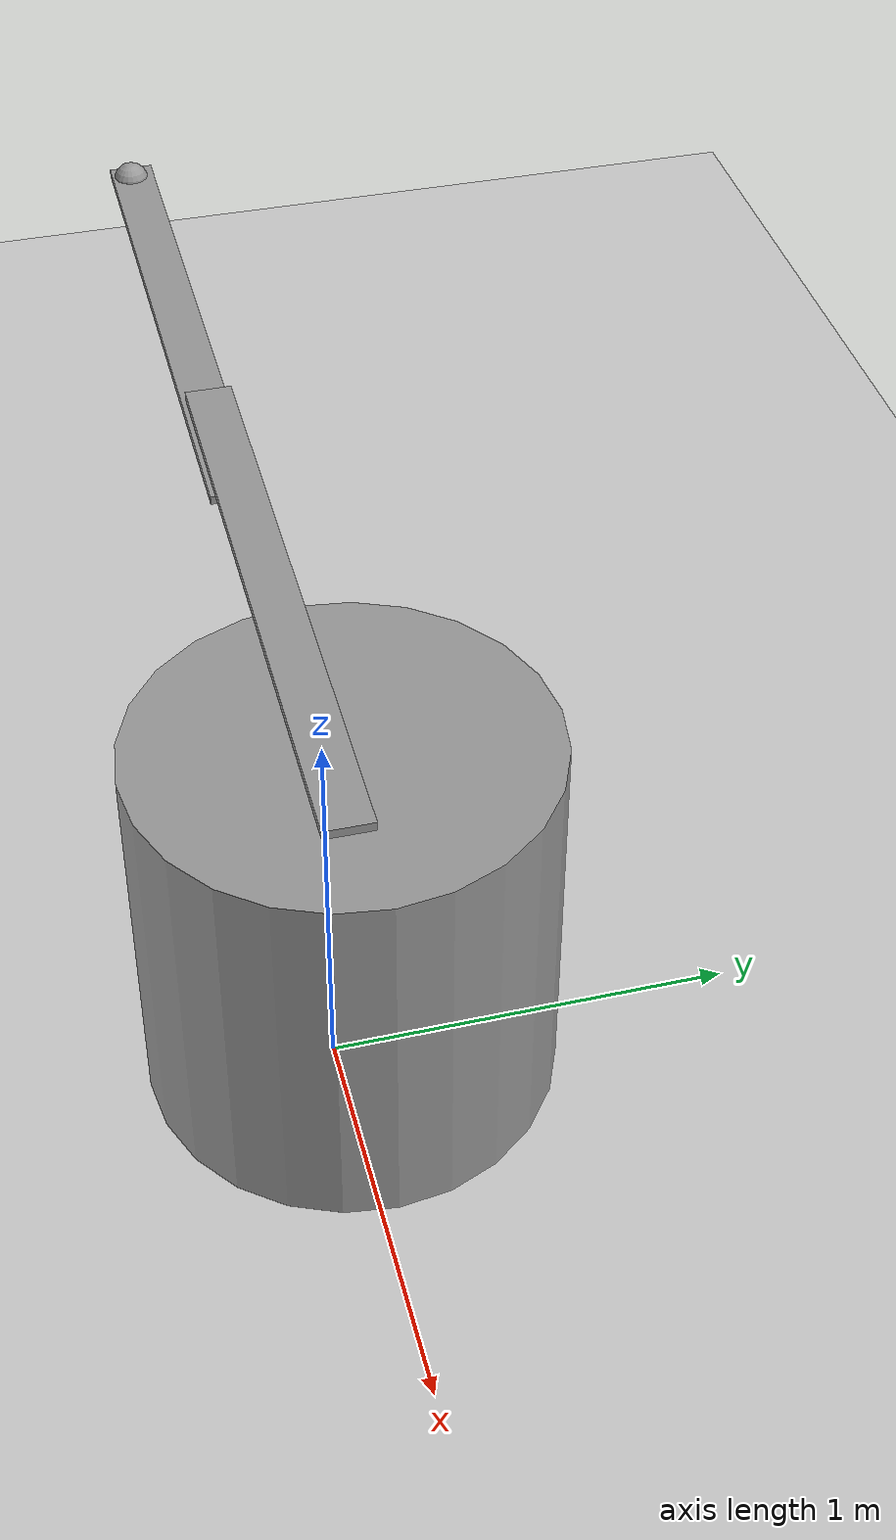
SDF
<sdf version="1.6">
 <world name="default">
  <light name="sun" type="directional">
   <pose>0 0 10 0 -0 0</pose>
   <diffuse>0.8 0.8 0.8 1</diffuse>
   <specular>0.2 0.2 0.2 1</specular>
   <attenuation>
    <range>1000</range>
    <constant>0.9</constant>
    <linear>0.01</linear>
    <quadratic>0.001</quadratic>
   </attenuation>
   <direction>-0.5 0.1 -0.9</direction>
  </light>
  <model name="ground_plane">
   <static>1</static>
   <link name="link">
    <collision name="collision">
     <geometry><plane><normal>0 0 1</normal><size>100 100</size></plane></geometry>
     <surface><friction><ode><mu>100</mu><mu2>50</mu2></ode></friction></surface>
    </collision>
    <visual name="visual">
     <cast_shadows>0</cast_shadows>
     <geometry><plane><normal>0 0 1</normal><size>100 100</size></plane></geometry>
     <material>
      <script><uri>file://media/materials/scripts/gazebo.material</uri><name>Gazebo/Grey</name></script>
     </material>
    </visual>
   </link>
  </model>
  <gravity>0 0 -9.8</gravity>
  <magnetic_field>6e-06 2.3e-05 -4.2e-05</magnetic_field>
  <atmosphere type="adiabatic"/>
  <physics name="default_physics" default="0" type="ode">
   <max_step_size>0.001</max_step_size>
   <real_time_factor>1</real_time_factor>
   <real_time_update_rate>1000</real_time_update_rate>
  </physics>
  <scene><ambient>0.4 0.4 0.4 1</ambient><background>0.7 0.7 0.7 1</background><shadows>1</shadows></scene>
  <spherical_coordinates>
   <surface_model>EARTH_WGS84</surface_model>
   <latitude_deg>0</latitude_deg>
   <longitude_deg>0</longitude_deg>
   <elevation>0</elevation>
   <heading_deg>0</heading_deg>
  </spherical_coordinates>
  <model name="2links_plugin_2">
   <link name="link">
    <pose>-0.33734 0.225855 4e-06 0 -0 0</pose>
    <inertial>
     <mass>5</mass>
     <inertia><ixx>0.145833</ixx><ixy>0</ixy><ixz>0</ixz><iyy>0.145833</iyy><iyz>0</iyz><izz>0.125</izz></inertia>
    </inertial>
    <visual name="visual">
     <geometry><cylinder><radius>0.5</radius><length>1</length></cylinder></geometry>
     <material>
      <script><name>Gazebo/Grey</name><uri>file://media/materials/scripts/gazebo.material</uri></script>
      <shader type="pixel"><normal_map>__default__</normal_map></shader>
      <ambient>0.3 0.3 0.3 1</ambient>
      <diffuse>0.7 0.7 0.7 1</diffuse>
      <specular>0.01 0.01 0.01 1</specular>
      <emissive>0 0 0 1</emissive>
     </material>
    </visual>
    <collision name="collision">
     <geometry><cylinder><radius>0.5</radius><length>1</length></cylinder></geometry>
     <surface>
      <friction>
       <ode><mu>1</mu><mu2>1</mu2><fdir1>0 0 0</fdir1><slip1>0</slip1><slip2>0</slip2></ode>
       <torsional>
        <coefficient>1</coefficient>
        <patch_radius>0</patch_radius>
        <surface_radius>0</surface_radius>
        <use_patch_radius>1</use_patch_radius>
        <ode><slip>0</slip></ode>
       </torsional>
      </friction>
      <bounce><restitution_coefficient>0</restitution_coefficient><threshold>1e+06</threshold></bounce>
      <contact>
       <collide_without_contact>0</collide_without_contact>
       <collide_without_contact_bitmask>1</collide_without_contact_bitmask>
       <collide_bitmask>1</collide_bitmask>
       <ode>
        <soft_cfm>0</soft_cfm>
        <soft_erp>0.2</soft_erp>
        <kp>1e+13</kp>
        <kd>1</kd>
        <max_vel>0.01</max_vel>
        <min_depth>0</min_depth>
       </ode>
       <bullet>
        <split_impulse>1</split_impulse>
        <split_impulse_penetration_threshold>-0.01</split_impulse_penetration_threshold>
        <soft_cfm>0</soft_cfm>
        <soft_erp>0.2</soft_erp>
        <kp>1e+13</kp>
        <kd>1</kd>
       </bullet>
      </contact>
     </surface>
    </collision>
   </link>
   <link name="link_0">
    <pose>-0.90209 0.180583 0.51149 3e-06 3e-06 0</pose>
    <inertial>
     <mass>0.001</mass>
     <inertia>
      <ixx>5.89e-06</ixx>
      <ixy>0</ixy>
      <ixz>0</ixz>
      <iyy>0.00107569</iyy>
      <iyz>0</iyz>
      <izz>0.00108117</izz>
     </inertia>
    </inertial>
    <visual name="visual">
     <geometry><box><size>1.66781 0.12126 0.022964</size></box></geometry>
     <material>
      <lighting>1</lighting>
      <script><uri>file://media/materials/scripts/gazebo.material</uri><name>Gazebo/Grey</name></script>
      <shader type="pixel"><normal_map>__default__</normal_map></shader>
      <ambient>0.3 0.3 0.3 1</ambient>
      <diffuse>0.7 0.7 0.7 1</diffuse>
      <specular>0.01 0.01 0.01 1</specular>
      <emissive>0 0 0 1</emissive>
     </material>
    </visual>
    <collision name="collision">
     <geometry><box><size>1.66781 0.12126 0.022964</size></box></geometry>
     <surface>
      <friction>
       <ode><mu>1</mu><mu2>1</mu2><fdir1>0 0 0</fdir1><slip1>0</slip1><slip2>0</slip2></ode>
       <torsional>
        <coefficient>1</coefficient>
        <patch_radius>0</patch_radius>
        <surface_radius>0</surface_radius>
        <use_patch_radius>1</use_patch_radius>
        <ode><slip>0</slip></ode>
       </torsional>
      </friction>
      <bounce><restitution_coefficient>0</restitution_coefficient><threshold>1e+06</threshold></bounce>
      <contact>
       <collide_without_contact>0</collide_without_contact>
       <collide_without_contact_bitmask>1</collide_without_contact_bitmask>
       <collide_bitmask>1</collide_bitmask>
       <ode>
        <soft_cfm>0</soft_cfm>
        <soft_erp>0.2</soft_erp>
        <kp>1e+13</kp>
        <kd>1</kd>
        <max_vel>0.01</max_vel>
        <min_depth>0</min_depth>
       </ode>
       <bullet>
        <split_impulse>1</split_impulse>
        <split_impulse_penetration_threshold>-0.01</split_impulse_penetration_threshold>
        <soft_cfm>0</soft_cfm>
        <soft_erp>0.2</soft_erp>
        <kp>1e+13</kp>
        <kd>1</kd>
       </bullet>
      </contact>
     </surface>
    </collision>
   </link>
   <link name="link_0_0">
    <pose>-2.92275 0.16269 0.488534 0 -0 0</pose>
    <inertial>
     <mass>0.0001</mass>
     <inertia><ixx>0.1</ixx><ixy>0</ixy><ixz>0</ixz><iyy>0.1</iyy><iyz>0</iyz><izz>0.1</izz></inertia>
    </inertial>
    <visual name="visual">
     <geometry><sphere><radius>0.05</radius></sphere></geometry>
     <material>
      <lighting>1</lighting>
      <script><uri>file://media/materials/scripts/gazebo.material</uri><name>Gazebo/Grey</name></script>
      <shader type="pixel"><normal_map>__default__</normal_map></shader>
      <ambient>0.3 0.3 0.3 1</ambient>
      <diffuse>0.7 0.7 0.7 1</diffuse>
      <specular>0.01 0.01 0.01 1</specular>
      <emissive>0 0 0 1</emissive>
     </material>
    </visual>
    <collision name="collision">
     <geometry><sphere><radius>0.05</radius></sphere></geometry>
     <surface>
      <friction>
       <ode><mu>1</mu><mu2>1</mu2><fdir1>0 0 0</fdir1><slip1>0</slip1><slip2>0</slip2></ode>
       <torsional>
        <coefficient>1</coefficient>
        <patch_radius>0</patch_radius>
        <surface_radius>0</surface_radius>
        <use_patch_radius>1</use_patch_radius>
        <ode><slip>0</slip></ode>
       </torsional>
      </friction>
      <bounce><restitution_coefficient>0</restitution_coefficient><threshold>1e+06</threshold></bounce>
      <contact>
       <collide_without_contact>0</collide_without_contact>
       <collide_without_contact_bitmask>1</collide_without_contact_bitmask>
       <collide_bitmask>1</collide_bitmask>
       <ode>
        <soft_cfm>0</soft_cfm>
        <soft_erp>0.2</soft_erp>
        <kp>1e+13</kp>
        <kd>1</kd>
        <max_vel>0.01</max_vel>
        <min_depth>0</min_depth>
       </ode>
       <bullet>
        <split_impulse>1</split_impulse>
        <split_impulse_penetration_threshold>-0.01</split_impulse_penetration_threshold>
        <soft_cfm>0</soft_cfm>
        <soft_erp>0.2</soft_erp>
        <kp>1e+13</kp>
        <kd>1</kd>
       </bullet>
      </contact>
     </surface>
    </collision>
   </link>
   <link name="link_0_clone">
    <pose>-2.13885 0.168005 0.488528 6e-06 6e-06 -0</pose>
    <inertial>
     <mass>0.001</mass>
     <inertia>
      <ixx>5.89e-06</ixx>
      <ixy>0</ixy>
      <ixz>0</ixz>
      <iyy>0.00107569</iyy>
      <iyz>0</iyz>
      <izz>0.00108117</izz>
     </inertia>
    </inertial>
    <visual name="visual">
     <geometry><box><size>1.66781 0.12126 0.022964</size></box></geometry>
     <material>
      <lighting>1</lighting>
      <script><uri>file://media/materials/scripts/gazebo.material</uri><name>Gazebo/Grey</name></script>
      <shader type="pixel"><normal_map>__default__</normal_map></shader>
      <ambient>0.3 0.3 0.3 1</ambient>
      <diffuse>0.7 0.7 0.7 1</diffuse>
      <specular>0.01 0.01 0.01 1</specular>
      <emissive>0 0 0 1</emissive>
     </material>
    </visual>
    <collision name="collision">
     <geometry><box><size>1.66781 0.12126 0.022964</size></box></geometry>
     <surface>
      <friction>
       <ode><mu>1</mu><mu2>1</mu2><fdir1>0 0 0</fdir1><slip1>0</slip1><slip2>0</slip2></ode>
       <torsional>
        <coefficient>1</coefficient>
        <patch_radius>0</patch_radius>
        <surface_radius>0</surface_radius>
        <use_patch_radius>1</use_patch_radius>
        <ode><slip>0</slip></ode>
       </torsional>
      </friction>
      <bounce><restitution_coefficient>0</restitution_coefficient><threshold>1e+06</threshold></bounce>
      <contact>
       <collide_without_contact>0</collide_without_contact>
       <collide_without_contact_bitmask>1</collide_without_contact_bitmask>
       <collide_bitmask>1</collide_bitmask>
       <ode>
        <soft_cfm>0</soft_cfm>
        <soft_erp>0.2</soft_erp>
        <kp>1e+13</kp>
        <kd>1</kd>
        <max_vel>0.01</max_vel>
        <min_depth>0</min_depth>
       </ode>
       <bullet>
        <split_impulse>1</split_impulse>
        <split_impulse_penetration_threshold>-0.01</split_impulse_penetration_threshold>
        <soft_cfm>0</soft_cfm>
        <soft_erp>0.2</soft_erp>
        <kp>1e+13</kp>
        <kd>1</kd>
       </bullet>
      </contact>
     </surface>
    </collision>
   </link>
   <joint name="base_fixture" type="fixed"><parent>world</parent><child>2links_plugin_2::link</child></joint>
   <joint name="link_0_JOINT_2" type="revolute">
    <parent>link_0</parent>
    <child>link_0_clone</child>
    <pose>0.62 0 0 0 -0 3.14</pose>
    <axis>
     <xyz>0 0 1</xyz>
     <use_parent_model_frame>0</use_parent_model_frame>
     <limit>
      <lower>-1.79769e+308</lower>
      <upper>1.79769e+308</upper>
      <effort>-1</effort>
      <velocity>-1</velocity>
     </limit>
     <dynamics>
      <spring_reference>0</spring_reference>
      <spring_stiffness>0</spring_stiffness>
      <damping>0</damping>
      <friction>0</friction>
     </dynamics>
    </axis>
    <physics>
     <ode><limit><cfm>0</cfm><erp>0.2</erp></limit><suspension><cfm>0</cfm><erp>0.2</erp></suspension></ode>
    </physics>
   </joint>
   <joint name="link_0_clone_JOINT_0" type="fixed">
    <parent>link_0_clone</parent>
    <child>link_0_0</child>
    <physics>
     <ode><limit><cfm>0</cfm><erp>0.2</erp></limit><suspension><cfm>0</cfm><erp>0.2</erp></suspension></ode>
    </physics>
   </joint>
   <joint name="link_JOINT_1" type="revolute">
    <parent>link</parent>
    <child>link_0</child>
    <pose>0.56 0 0 0 -0 0</pose>
    <axis>
     <xyz>0 0 1</xyz>
     <use_parent_model_frame>0</use_parent_model_frame>
     <limit>
      <lower>-1.79769e+308</lower>
      <upper>1.79769e+308</upper>
      <effort>-1</effort>
      <velocity>-1</velocity>
     </limit>
     <dynamics>
      <spring_reference>0</spring_reference>
      <spring_stiffness>0</spring_stiffness>
      <damping>0</damping>
      <friction>0</friction>
     </dynamics>
    </axis>
    <physics>
     <ode><limit><cfm>0</cfm><erp>0.2</erp></limit><suspension><cfm>0</cfm><erp>0.2</erp></suspension></ode>
    </physics>
   </joint>
   <static>0</static>
   <plugin name="gazebo_pkg" filename="libgazebo_pkg.so"/>
   <pose>0.339641 -0.18118 0.499996 0 0 -0.000487</pose>
  </model>
 </world>
</sdf>
